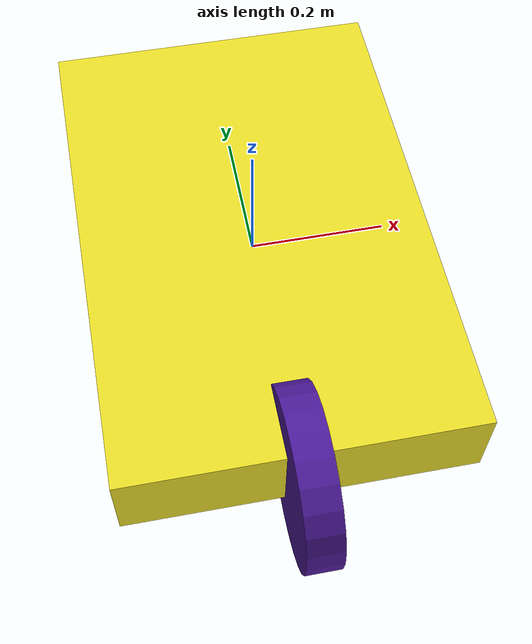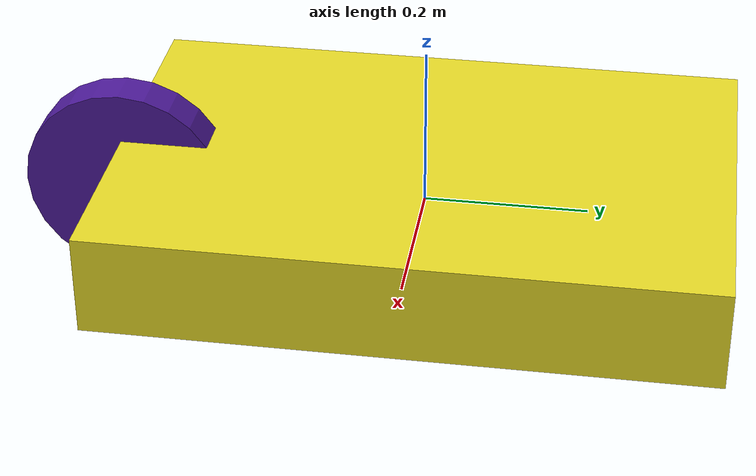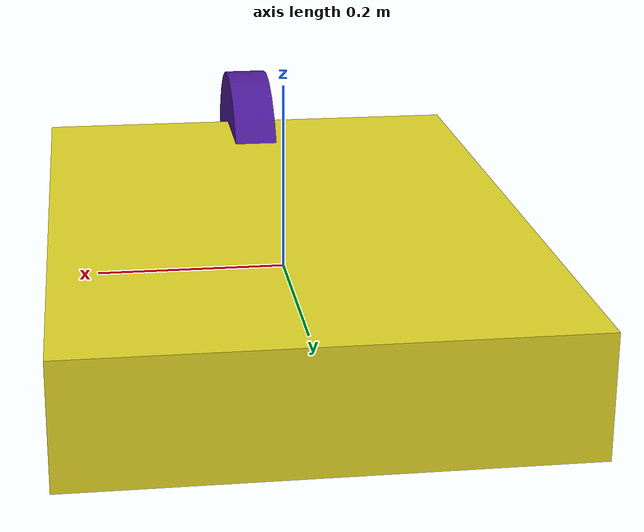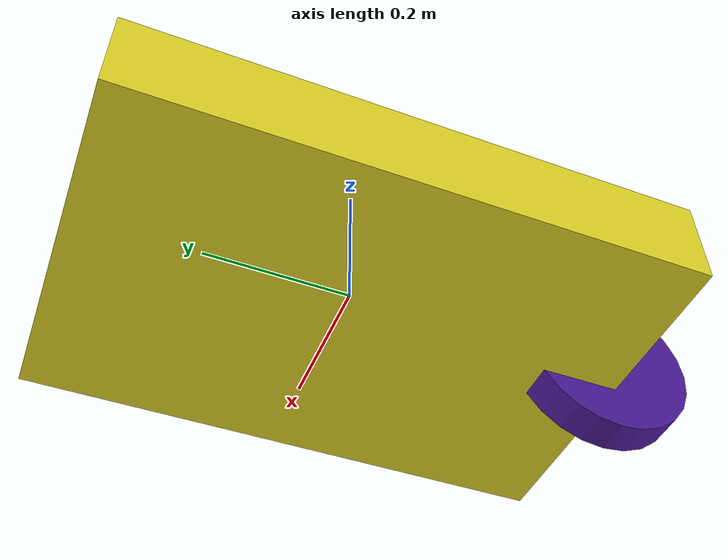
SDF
<sdf version='1.7'>
  <model name='Diff Drive'>
    <link name='base'>
      <inertial>
        <pose>0 0 0 0 -0 0</pose>
        <mass>1</mass>
        <inertia>
          <ixx>1</ixx>
          <ixy>1</ixy>
          <ixz>1</ixz>
          <iyy>1</iyy>
          <iyz>1</iyz>
          <izz>1</izz>
        </inertia>
      </inertial>
      <collision name='base_fixed_joint_lump__body_collision'>
        <pose>0 0 0 0 -0 0</pose>
        <geometry>
          <box>
            <size>0.5 0.75 0.125</size>
          </box>
        </geometry>
        <surface>
          <contact>
            <ode/>
          </contact>
          <friction>
            <ode/>
          </friction>
        </surface>
      </collision>
      <collision name='base_fixed_joint_lump__caster_collision_1'>
        <pose>0 -0.375 0 0 -1.5708 0</pose>
        <geometry>
          <cylinder>
            <length>0.05</length>
            <radius>0.25</radius>
          </cylinder>
        </geometry>
        <surface>
          <contact>
            <ode/>
          </contact>
          <friction>
            <ode/>
          </friction>
        </surface>
      </collision>
      <visual name='base_fixed_joint_lump__body_visual'>
        <pose>0 0 0 0 -0 0</pose>
        <geometry>
          <box>
            <size>0.5 0.75 0.125</size>
          </box>
        </geometry>
        <material>
          <script>
            <name>material Gazebo/YellowGlow</name>
            <uri>file://media/materials/scripts/gazebo.material</uri>
          </script>
        </material>
      </visual>
      <visual name='base_fixed_joint_lump__caster_visual_1'>
        <pose>0 -0.375 0 0 -1.5708 0</pose>
        <geometry>
          <cylinder>
            <length>0.05</length>
            <radius>0.125</radius>
          </cylinder>
        </geometry>
        <material>
          <script>
            <name>material Gazebo/Indigo</name>
            <uri>file://media/materials/scripts/gazebo.material</uri>
          </script>
        </material>
      </visual>
      <velocity_decay/>
      <gravity>1</gravity>
      <velocity_decay/>
    </link>
  </model>
</sdf>
